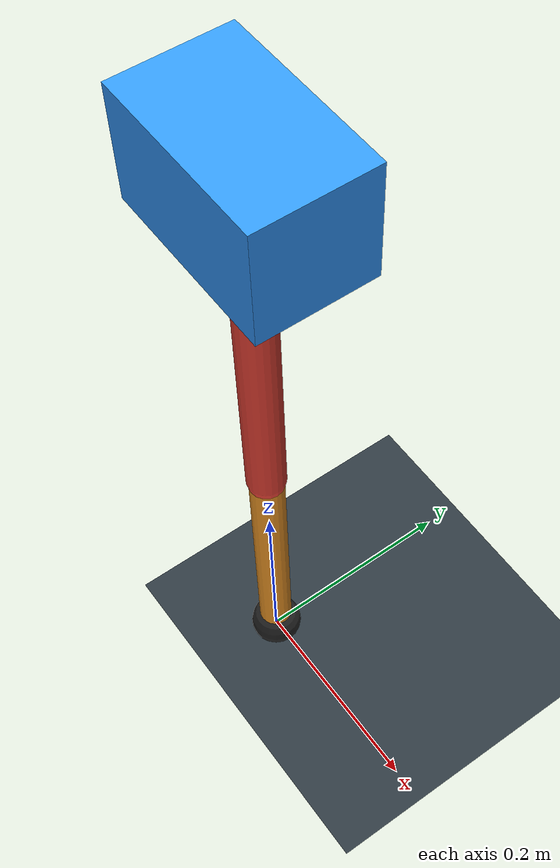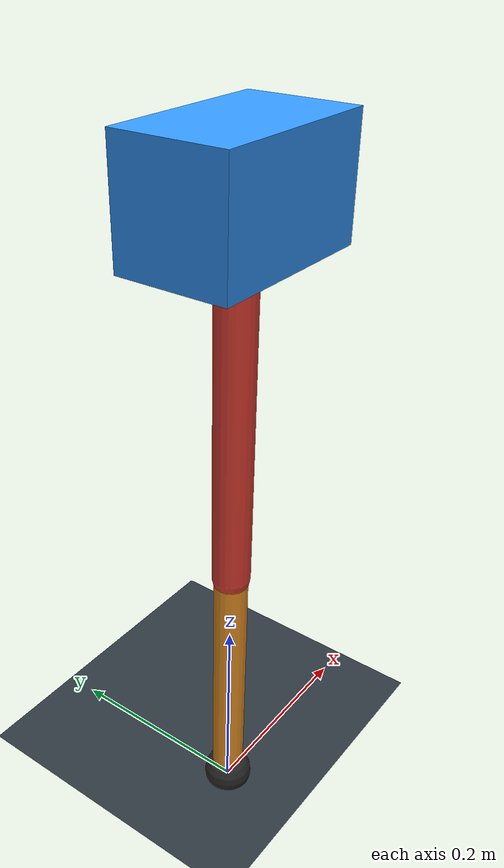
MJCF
<mujoco model="single_axis_two_bar">
  <compiler angle="radian" inertiafromgeom="true"/>
  <option timestep="0.001" integrator="implicitfast" gravity="0 0 -9.81"/>
  <default>
    <joint damping="0.08"/>
    <geom friction="1.2 0.01 0.0001" condim="3"/>
  </default>
  <worldbody>
    <geom name="floor" type="plane" size="5 5 0.1" rgba="0.18 0.22 0.25 1"/>
    <body name="carriage" pos="0 0 0.6215383802424688">
      <joint name="pole_slide" type="slide" axis="0 0 1"/>
      <geom name="payload" type="box" size="0.08 0.05 0.05" mass="2.7066264807336964" rgba="0.2 0.6 1 1"/>
      <body name="thigh" pos="0 0 0">
        <joint name="hip" type="hinge" axis="0 1 0"/>
        <geom name="thigh_link" type="capsule" fromto="0 0 0 0 0 -0.3498684455971394" size="0.018" mass="0.24928589059158154" rgba="0.9 0.25 0.2 1"/>
        <body name="shank" pos="0 0 -0.3498684455971394">
          <joint name="knee" type="hinge" axis="0 1 0"/>
          <geom name="shank_link" type="capsule" fromto="0 0 0 0 0 -0.2651195752713852" size="0.016" mass="0.18890120062696347" rgba="0.95 0.6 0.15 1"/>
          <geom name="foot" type="sphere" pos="0 0 -0.2651195752713852" size="0.025" mass="0.03" rgba="0.15 0.15 0.15 1"/>
          <site name="toe" pos="0 0 -0.2651195752713852" size="0.008"/>
        </body>
      </body>
    </body>
  </worldbody>
  <actuator>
    <motor name="hip_motor" joint="hip" ctrlrange="-34.1634388427974 34.1634388427974"/>
    <motor name="knee_motor" joint="knee" ctrlrange="-99.68346433460377 99.68346433460377"/>
  </actuator>
</mujoco>
